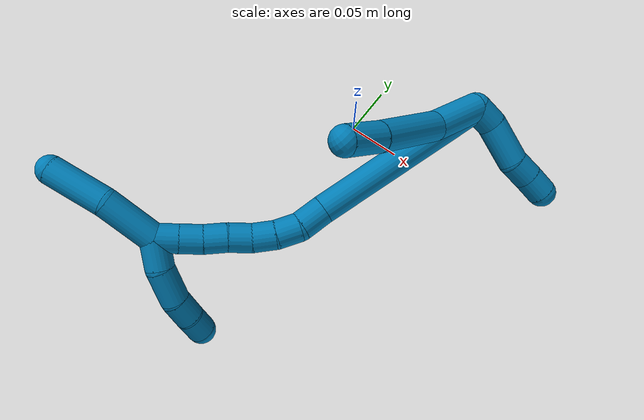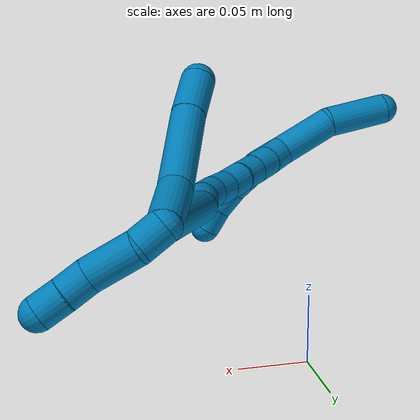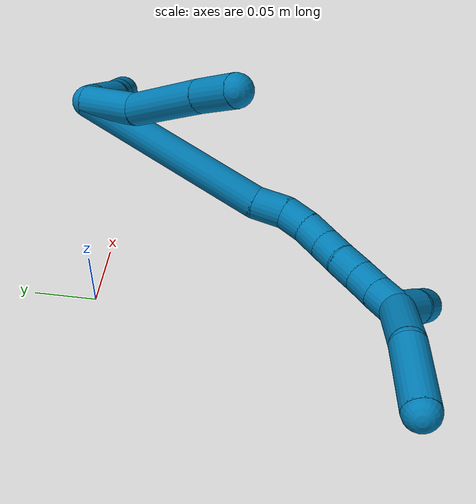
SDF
<sdf version="1.7">
 <world name="default">
  <model name="9">
   <static>0</static>
   <link name="9">
    <collision name="collision-cylinder-e_1_2_8">
     <pose>-0.013374 -0.016836 -0.008546 2.04052 -0.616311 -0.956717</pose>
     <geometry><cylinder><radius>0.0125</radius><length>0.046276</length></cylinder></geometry>
     <surface>
      <friction><ode><mu>1.16</mu><mu2>1.16</mu2><slip1>0</slip1><slip2>0</slip2></ode></friction>
      <contact><ode><kp>1e+06</kp><kd>1</kd><max_vel>0</max_vel><min_depth>0.001</min_depth></ode></contact>
     </surface>
    </collision>
    <visual name="visual-cylinder-e_1_2_8">
     <pose>-0.013374 -0.016836 -0.008546 2.04052 -0.616311 -0.956717</pose>
     <geometry><cylinder><radius>0.0125</radius><length>0.046276</length></cylinder></geometry>
     <material><ambient>0 0.490196 0.709804 1</ambient></material>
    </visual>
    <collision name="collision-cylinder-e_2_8_9">
     <pose>-0.051771 -0.049575 -0.034196 2.39256 -0.819859 -1.67096</pose>
     <geometry><cylinder><radius>0.0125</radius><length>0.068457</length></cylinder></geometry>
     <surface>
      <friction><ode><mu>1.16</mu><mu2>1.16</mu2><slip1>0</slip1><slip2>0</slip2></ode></friction>
      <contact><ode><kp>1e+06</kp><kd>1</kd><max_vel>0</max_vel><min_depth>0.001</min_depth></ode></contact>
     </surface>
    </collision>
    <visual name="visual-cylinder-e_2_8_9">
     <pose>-0.051771 -0.049575 -0.034196 2.39256 -0.819859 -1.67096</pose>
     <geometry><cylinder><radius>0.0125</radius><length>0.068457</length></cylinder></geometry>
     <material><ambient>0 0.490196 0.709804 1</ambient></material>
    </visual>
    <collision name="collision-cylinder-e_3_9_6">
     <pose>-0.088896 -0.073766 -0.061088 2.43894 -0.75637 -1.65134</pose>
     <geometry><cylinder><radius>0.0125</radius><length>0.035268</length></cylinder></geometry>
     <surface>
      <friction><ode><mu>1.16</mu><mu2>1.16</mu2><slip1>0</slip1><slip2>0</slip2></ode></friction>
      <contact><ode><kp>1e+06</kp><kd>1</kd><max_vel>0</max_vel><min_depth>0.001</min_depth></ode></contact>
     </surface>
    </collision>
    <visual name="visual-cylinder-e_3_9_6">
     <pose>-0.088896 -0.073766 -0.061088 2.43894 -0.75637 -1.65134</pose>
     <geometry><cylinder><radius>0.0125</radius><length>0.035268</length></cylinder></geometry>
     <material><ambient>0 0.490196 0.709804 1</ambient></material>
    </visual>
    <collision name="collision-cylinder-e_1_2_10">
     <pose>0.001512 0.000572 0.010636 -0.053769 0.141059 -0.003799</pose>
     <geometry><cylinder><radius>0.0125</radius><length>0.021516</length></cylinder></geometry>
     <surface>
      <friction><ode><mu>1.16</mu><mu2>1.16</mu2><slip1>0</slip1><slip2>0</slip2></ode></friction>
      <contact><ode><kp>1e+06</kp><kd>1</kd><max_vel>0</max_vel><min_depth>0.001</min_depth></ode></contact>
     </surface>
    </collision>
    <visual name="visual-cylinder-e_1_2_10">
     <pose>0.001512 0.000572 0.010636 -0.053769 0.141059 -0.003799</pose>
     <geometry><cylinder><radius>0.0125</radius><length>0.021516</length></cylinder></geometry>
     <material><ambient>0 0.490196 0.709804 1</ambient></material>
    </visual>
    <collision name="collision-cylinder-e_2_10_11">
     <pose>0.001402 -0.001795 0.039863 0.156814 -0.086004 -0.006761</pose>
     <geometry><cylinder><radius>0.0125</radius><length>0.037785</length></cylinder></geometry>
     <surface>
      <friction><ode><mu>1.16</mu><mu2>1.16</mu2><slip1>0</slip1><slip2>0</slip2></ode></friction>
      <contact><ode><kp>1e+06</kp><kd>1</kd><max_vel>0</max_vel><min_depth>0.001</min_depth></ode></contact>
     </surface>
    </collision>
    <visual name="visual-cylinder-e_2_10_11">
     <pose>0.001402 -0.001795 0.039863 0.156814 -0.086004 -0.006761</pose>
     <geometry><cylinder><radius>0.0125</radius><length>0.037785</length></cylinder></geometry>
     <material><ambient>0 0.490196 0.709804 1</ambient></material>
    </visual>
    <collision name="collision-cylinder-e_3_11_12">
     <pose>0.000917 -0.004058 0.068494 -0.067211 0.112546 -0.003788</pose>
     <geometry><cylinder><radius>0.0125</radius><length>0.020253</length></cylinder></geometry>
     <surface>
      <friction><ode><mu>1.16</mu><mu2>1.16</mu2><slip1>0</slip1><slip2>0</slip2></ode></friction>
      <contact><ode><kp>1e+06</kp><kd>1</kd><max_vel>0</max_vel><min_depth>0.001</min_depth></ode></contact>
     </surface>
    </collision>
    <visual name="visual-cylinder-e_3_11_12">
     <pose>0.000917 -0.004058 0.068494 -0.067211 0.112546 -0.003788</pose>
     <geometry><cylinder><radius>0.0125</radius><length>0.020253</length></cylinder></geometry>
     <material><ambient>0 0.490196 0.709804 1</ambient></material>
    </visual>
    <collision name="collision-cylinder-e_4_12_5">
     <pose>0.002736 -0.003061 0.088729 -0.03157 0.066818 -0.001055</pose>
     <geometry><cylinder><radius>0.0125</radius><length>0.020447</length></cylinder></geometry>
     <surface>
      <friction><ode><mu>1.16</mu><mu2>1.16</mu2><slip1>0</slip1><slip2>0</slip2></ode></friction>
      <contact><ode><kp>1e+06</kp><kd>1</kd><max_vel>0</max_vel><min_depth>0.001</min_depth></ode></contact>
     </surface>
    </collision>
    <visual name="visual-cylinder-e_4_12_5">
     <pose>0.002736 -0.003061 0.088729 -0.03157 0.066818 -0.001055</pose>
     <geometry><cylinder><radius>0.0125</radius><length>0.020447</length></cylinder></geometry>
     <material><ambient>0 0.490196 0.709804 1</ambient></material>
    </visual>
    <collision name="collision-cylinder-e_1_2_13">
     <pose>-0.019297 -0.073868 -0.011766 1.72875 -0.252475 -0.295289</pose>
     <geometry><cylinder><radius>0.0125</radius><length>0.154496</length></cylinder></geometry>
     <surface>
      <friction><ode><mu>1.16</mu><mu2>1.16</mu2><slip1>0</slip1><slip2>0</slip2></ode></friction>
      <contact><ode><kp>1e+06</kp><kd>1</kd><max_vel>0</max_vel><min_depth>0.001</min_depth></ode></contact>
     </surface>
    </collision>
    <visual name="visual-cylinder-e_1_2_13">
     <pose>-0.019297 -0.073868 -0.011766 1.72875 -0.252475 -0.295289</pose>
     <geometry><cylinder><radius>0.0125</radius><length>0.154496</length></cylinder></geometry>
     <material><ambient>0 0.490196 0.709804 1</ambient></material>
    </visual>
    <collision name="collision-cylinder-e_2_13_14">
     <pose>-0.044319 -0.158423 -0.025483 1.75144 -0.485057 -0.576803</pose>
     <geometry><cylinder><radius>0.0125</radius><length>0.024561</length></cylinder></geometry>
     <surface>
      <friction><ode><mu>1.16</mu><mu2>1.16</mu2><slip1>0</slip1><slip2>0</slip2></ode></friction>
      <contact><ode><kp>1e+06</kp><kd>1</kd><max_vel>0</max_vel><min_depth>0.001</min_depth></ode></contact>
     </surface>
    </collision>
    <visual name="visual-cylinder-e_2_13_14">
     <pose>-0.044319 -0.158423 -0.025483 1.75144 -0.485057 -0.576803</pose>
     <geometry><cylinder><radius>0.0125</radius><length>0.024561</length></cylinder></geometry>
     <material><ambient>0 0.490196 0.709804 1</ambient></material>
    </visual>
    <collision name="collision-cylinder-e_3_14_15">
     <pose>-0.052548 -0.178161 -0.031771 2.01756 -0.244426 -0.385234</pose>
     <geometry><cylinder><radius>0.0125</radius><length>0.020686</length></cylinder></geometry>
     <surface>
      <friction><ode><mu>1.16</mu><mu2>1.16</mu2><slip1>0</slip1><slip2>0</slip2></ode></friction>
      <contact><ode><kp>1e+06</kp><kd>1</kd><max_vel>0</max_vel><min_depth>0.001</min_depth></ode></contact>
     </surface>
    </collision>
    <visual name="visual-cylinder-e_3_14_15">
     <pose>-0.052548 -0.178161 -0.031771 2.01756 -0.244426 -0.385234</pose>
     <geometry><cylinder><radius>0.0125</radius><length>0.020686</length></cylinder></geometry>
     <material><ambient>0 0.490196 0.709804 1</ambient></material>
    </visual>
    <collision name="collision-cylinder-e_4_15_16">
     <pose>-0.056454 -0.195385 -0.041826 2.18131 -0.139692 -0.267069</pose>
     <geometry><cylinder><radius>0.0125</radius><length>0.020147</length></cylinder></geometry>
     <surface>
      <friction><ode><mu>1.16</mu><mu2>1.16</mu2><slip1>0</slip1><slip2>0</slip2></ode></friction>
      <contact><ode><kp>1e+06</kp><kd>1</kd><max_vel>0</max_vel><min_depth>0.001</min_depth></ode></contact>
     </surface>
    </collision>
    <visual name="visual-cylinder-e_4_15_16">
     <pose>-0.056454 -0.195385 -0.041826 2.18131 -0.139692 -0.267069</pose>
     <geometry><cylinder><radius>0.0125</radius><length>0.020147</length></cylinder></geometry>
     <material><ambient>0 0.490196 0.709804 1</ambient></material>
    </visual>
    <collision name="collision-cylinder-e_5_16_17">
     <pose>-0.059658 -0.210382 -0.054696 2.3796 -0.18028 -0.443852</pose>
     <geometry><cylinder><radius>0.0125</radius><length>0.020095</length></cylinder></geometry>
     <surface>
      <friction><ode><mu>1.16</mu><mu2>1.16</mu2><slip1>0</slip1><slip2>0</slip2></ode></friction>
      <contact><ode><kp>1e+06</kp><kd>1</kd><max_vel>0</max_vel><min_depth>0.001</min_depth></ode></contact>
     </surface>
    </collision>
    <visual name="visual-cylinder-e_5_16_17">
     <pose>-0.059658 -0.210382 -0.054696 2.3796 -0.18028 -0.443852</pose>
     <geometry><cylinder><radius>0.0125</radius><length>0.020095</length></cylinder></geometry>
     <material><ambient>0 0.490196 0.709804 1</ambient></material>
    </visual>
    <collision name="collision-cylinder-e_6_17_18">
     <pose>-0.06334 -0.224751 -0.068139 2.26592 -0.189111 -0.399759</pose>
     <geometry><cylinder><radius>0.0125</radius><length>0.020004</length></cylinder></geometry>
     <surface>
      <friction><ode><mu>1.16</mu><mu2>1.16</mu2><slip1>0</slip1><slip2>0</slip2></ode></friction>
      <contact><ode><kp>1e+06</kp><kd>1</kd><max_vel>0</max_vel><min_depth>0.001</min_depth></ode></contact>
     </surface>
    </collision>
    <visual name="visual-cylinder-e_6_17_18">
     <pose>-0.06334 -0.224751 -0.068139 2.26592 -0.189111 -0.399759</pose>
     <geometry><cylinder><radius>0.0125</radius><length>0.020004</length></cylinder></geometry>
     <material><ambient>0 0.490196 0.709804 1</ambient></material>
    </visual>
    <collision name="collision-cylinder-e_7_18_19">
     <pose>-0.067073 -0.239065 -0.08156 2.38199 -0.186275 -0.459724</pose>
     <geometry><cylinder><radius>0.0125</radius><length>0.020009</length></cylinder></geometry>
     <surface>
      <friction><ode><mu>1.16</mu><mu2>1.16</mu2><slip1>0</slip1><slip2>0</slip2></ode></friction>
      <contact><ode><kp>1e+06</kp><kd>1</kd><max_vel>0</max_vel><min_depth>0.001</min_depth></ode></contact>
     </surface>
    </collision>
    <visual name="visual-cylinder-e_7_18_19">
     <pose>-0.067073 -0.239065 -0.08156 2.38199 -0.186275 -0.459724</pose>
     <geometry><cylinder><radius>0.0125</radius><length>0.020009</length></cylinder></geometry>
     <material><ambient>0 0.490196 0.709804 1</ambient></material>
    </visual>
    <collision name="collision-cylinder-e_8_19_1">
     <pose>-0.071181 -0.25242 -0.09587 2.39949 -0.227484 -0.571164</pose>
     <geometry><cylinder><radius>0.0125</radius><length>0.020001</length></cylinder></geometry>
     <surface>
      <friction><ode><mu>1.16</mu><mu2>1.16</mu2><slip1>0</slip1><slip2>0</slip2></ode></friction>
      <contact><ode><kp>1e+06</kp><kd>1</kd><max_vel>0</max_vel><min_depth>0.001</min_depth></ode></contact>
     </surface>
    </collision>
    <visual name="visual-cylinder-e_8_19_1">
     <pose>-0.071181 -0.25242 -0.09587 2.39949 -0.227484 -0.571164</pose>
     <geometry><cylinder><radius>0.0125</radius><length>0.020001</length></cylinder></geometry>
     <material><ambient>0 0.490196 0.709804 1</ambient></material>
    </visual>
    <collision name="collision-cylinder-e_1_1_20">
     <pose>-0.075729 -0.265728 -0.092228 0.55584 -0.177997 -0.050907</pose>
     <geometry><cylinder><radius>0.0125</radius><length>0.02589</length></cylinder></geometry>
     <surface>
      <friction><ode><mu>1.16</mu><mu2>1.16</mu2><slip1>0</slip1><slip2>0</slip2></ode></friction>
      <contact><ode><kp>1e+06</kp><kd>1</kd><max_vel>0</max_vel><min_depth>0.001</min_depth></ode></contact>
     </surface>
    </collision>
    <visual name="visual-cylinder-e_1_1_20">
     <pose>-0.075729 -0.265728 -0.092228 0.55584 -0.177997 -0.050907</pose>
     <geometry><cylinder><radius>0.0125</radius><length>0.02589</length></cylinder></geometry>
     <material><ambient>0 0.490196 0.709804 1</ambient></material>
    </visual>
    <collision name="collision-cylinder-e_2_20_21">
     <pose>-0.076904 -0.278606 -0.066878 0.400825 0.070648 0.014357</pose>
     <geometry><cylinder><radius>0.0125</radius><length>0.031635</length></cylinder></geometry>
     <surface>
      <friction><ode><mu>1.16</mu><mu2>1.16</mu2><slip1>0</slip1><slip2>0</slip2></ode></friction>
      <contact><ode><kp>1e+06</kp><kd>1</kd><max_vel>0</max_vel><min_depth>0.001</min_depth></ode></contact>
     </surface>
    </collision>
    <visual name="visual-cylinder-e_2_20_21">
     <pose>-0.076904 -0.278606 -0.066878 0.400825 0.070648 0.014357</pose>
     <geometry><cylinder><radius>0.0125</radius><length>0.031635</length></cylinder></geometry>
     <material><ambient>0 0.490196 0.709804 1</ambient></material>
    </visual>
    <collision name="collision-cylinder-e_3_21_22">
     <pose>-0.072983 -0.287295 -0.041962 0.239096 0.25652 0.030981</pose>
     <geometry><cylinder><radius>0.0125</radius><length>0.02211</length></cylinder></geometry>
     <surface>
      <friction><ode><mu>1.16</mu><mu2>1.16</mu2><slip1>0</slip1><slip2>0</slip2></ode></friction>
      <contact><ode><kp>1e+06</kp><kd>1</kd><max_vel>0</max_vel><min_depth>0.001</min_depth></ode></contact>
     </surface>
    </collision>
    <visual name="visual-cylinder-e_3_21_22">
     <pose>-0.072983 -0.287295 -0.041962 0.239096 0.25652 0.030981</pose>
     <geometry><cylinder><radius>0.0125</radius><length>0.02211</length></cylinder></geometry>
     <material><ambient>0 0.490196 0.709804 1</ambient></material>
    </visual>
    <collision name="collision-cylinder-e_4_22_4">
     <pose>-0.06618 -0.29257 -0.022618 0.297149 0.403433 0.061198</pose>
     <geometry><cylinder><radius>0.0125</radius><length>0.020365</length></cylinder></geometry>
     <surface>
      <friction><ode><mu>1.16</mu><mu2>1.16</mu2><slip1>0</slip1><slip2>0</slip2></ode></friction>
      <contact><ode><kp>1e+06</kp><kd>1</kd><max_vel>0</max_vel><min_depth>0.001</min_depth></ode></contact>
     </surface>
    </collision>
    <visual name="visual-cylinder-e_4_22_4">
     <pose>-0.06618 -0.29257 -0.022618 0.297149 0.403433 0.061198</pose>
     <geometry><cylinder><radius>0.0125</radius><length>0.020365</length></cylinder></geometry>
     <material><ambient>0 0.490196 0.709804 1</ambient></material>
    </visual>
    <collision name="collision-cylinder-e_1_1_23">
     <pose>-0.074111 -0.262538 -0.126844 2.99417 -0.028018 -0.374986</pose>
     <geometry><cylinder><radius>0.0125</radius><length>0.048128</length></cylinder></geometry>
     <surface>
      <friction><ode><mu>1.16</mu><mu2>1.16</mu2><slip1>0</slip1><slip2>0</slip2></ode></friction>
      <contact><ode><kp>1e+06</kp><kd>1</kd><max_vel>0</max_vel><min_depth>0.001</min_depth></ode></contact>
     </surface>
    </collision>
    <visual name="visual-cylinder-e_1_1_23">
     <pose>-0.074111 -0.262538 -0.126844 2.99417 -0.028018 -0.374986</pose>
     <geometry><cylinder><radius>0.0125</radius><length>0.048128</length></cylinder></geometry>
     <material><ambient>0 0.490196 0.709804 1</ambient></material>
    </visual>
    <collision name="collision-cylinder-e_2_23_3">
     <pose>-0.06959 -0.275536 -0.17422 2.75994 0.201657 0.964898</pose>
     <geometry><cylinder><radius>0.0125</radius><length>0.051872</length></cylinder></geometry>
     <surface>
      <friction><ode><mu>1.16</mu><mu2>1.16</mu2><slip1>0</slip1><slip2>0</slip2></ode></friction>
      <contact><ode><kp>1e+06</kp><kd>1</kd><max_vel>0</max_vel><min_depth>0.001</min_depth></ode></contact>
     </surface>
    </collision>
    <visual name="visual-cylinder-e_2_23_3">
     <pose>-0.06959 -0.275536 -0.17422 2.75994 0.201657 0.964898</pose>
     <geometry><cylinder><radius>0.0125</radius><length>0.051872</length></cylinder></geometry>
     <material><ambient>0 0.490196 0.709804 1</ambient></material>
    </visual>
    <collision name="collision-sphere-3">
     <pose>-0.064395 -0.285 -0.197802 0 -0 0</pose>
     <geometry><sphere><radius>0.0125</radius></sphere></geometry>
     <surface>
      <friction><ode><mu>1.16</mu><mu2>1.16</mu2><slip1>0</slip1><slip2>0</slip2></ode></friction>
      <contact><ode><kp>1e+06</kp><kd>1</kd><max_vel>0</max_vel><min_depth>0.001</min_depth></ode></contact>
     </surface>
    </collision>
    <visual name="visual-sphere-3">
     <pose>-0.064395 -0.285 -0.197802 0 -0 0</pose>
     <geometry><sphere><radius>0.0125</radius></sphere></geometry>
     <material><ambient>0 0.490196 0.709804 1</ambient></material>
    </visual>
    <collision name="collision-sphere-23">
     <pose>-0.074785 -0.266072 -0.150638 0 -0 0</pose>
     <geometry><sphere><radius>0.0125</radius></sphere></geometry>
     <surface>
      <friction><ode><mu>1.16</mu><mu2>1.16</mu2><slip1>0</slip1><slip2>0</slip2></ode></friction>
      <contact><ode><kp>1e+06</kp><kd>1</kd><max_vel>0</max_vel><min_depth>0.001</min_depth></ode></contact>
     </surface>
    </collision>
    <visual name="visual-sphere-23">
     <pose>-0.074785 -0.266072 -0.150638 0 -0 0</pose>
     <geometry><sphere><radius>0.0125</radius></sphere></geometry>
     <material><ambient>0 0.490196 0.709804 1</ambient></material>
    </visual>
    <collision name="collision-sphere-4">
     <pose>-0.062183 -0.295312 -0.013663 0 -0 0</pose>
     <geometry><sphere><radius>0.0125</radius></sphere></geometry>
     <surface>
      <friction><ode><mu>1.16</mu><mu2>1.16</mu2><slip1>0</slip1><slip2>0</slip2></ode></friction>
      <contact><ode><kp>1e+06</kp><kd>1</kd><max_vel>0</max_vel><min_depth>0.001</min_depth></ode></contact>
     </surface>
    </collision>
    <visual name="visual-sphere-4">
     <pose>-0.062183 -0.295312 -0.013663 0 -0 0</pose>
     <geometry><sphere><radius>0.0125</radius></sphere></geometry>
     <material><ambient>0 0.490196 0.709804 1</ambient></material>
    </visual>
    <collision name="collision-sphere-22">
     <pose>-0.070178 -0.289828 -0.031573 0 -0 0</pose>
     <geometry><sphere><radius>0.0125</radius></sphere></geometry>
     <surface>
      <friction><ode><mu>1.16</mu><mu2>1.16</mu2><slip1>0</slip1><slip2>0</slip2></ode></friction>
      <contact><ode><kp>1e+06</kp><kd>1</kd><max_vel>0</max_vel><min_depth>0.001</min_depth></ode></contact>
     </surface>
    </collision>
    <visual name="visual-sphere-22">
     <pose>-0.070178 -0.289828 -0.031573 0 -0 0</pose>
     <geometry><sphere><radius>0.0125</radius></sphere></geometry>
     <material><ambient>0 0.490196 0.709804 1</ambient></material>
    </visual>
    <collision name="collision-sphere-21">
     <pose>-0.075788 -0.284763 -0.052351 0 -0 0</pose>
     <geometry><sphere><radius>0.0125</radius></sphere></geometry>
     <surface>
      <friction><ode><mu>1.16</mu><mu2>1.16</mu2><slip1>0</slip1><slip2>0</slip2></ode></friction>
      <contact><ode><kp>1e+06</kp><kd>1</kd><max_vel>0</max_vel><min_depth>0.001</min_depth></ode></contact>
     </surface>
    </collision>
    <visual name="visual-sphere-21">
     <pose>-0.075788 -0.284763 -0.052351 0 -0 0</pose>
     <geometry><sphere><radius>0.0125</radius></sphere></geometry>
     <material><ambient>0 0.490196 0.709804 1</ambient></material>
    </visual>
    <collision name="collision-sphere-20">
     <pose>-0.078021 -0.27245 -0.081406 0 -0 0</pose>
     <geometry><sphere><radius>0.0125</radius></sphere></geometry>
     <surface>
      <friction><ode><mu>1.16</mu><mu2>1.16</mu2><slip1>0</slip1><slip2>0</slip2></ode></friction>
      <contact><ode><kp>1e+06</kp><kd>1</kd><max_vel>0</max_vel><min_depth>0.001</min_depth></ode></contact>
     </surface>
    </collision>
    <visual name="visual-sphere-20">
     <pose>-0.078021 -0.27245 -0.081406 0 -0 0</pose>
     <geometry><sphere><radius>0.0125</radius></sphere></geometry>
     <material><ambient>0 0.490196 0.709804 1</ambient></material>
    </visual>
    <collision name="collision-sphere-11">
     <pose>-0.000221 -0.004734 0.058454 0 -0 0</pose>
     <geometry><sphere><radius>0.0125</radius></sphere></geometry>
     <surface>
      <friction><ode><mu>1.16</mu><mu2>1.16</mu2><slip1>0</slip1><slip2>0</slip2></ode></friction>
      <contact><ode><kp>1e+06</kp><kd>1</kd><max_vel>0</max_vel><min_depth>0.001</min_depth></ode></contact>
     </surface>
    </collision>
    <visual name="visual-sphere-11">
     <pose>-0.000221 -0.004734 0.058454 0 -0 0</pose>
     <geometry><sphere><radius>0.0125</radius></sphere></geometry>
     <material><ambient>0 0.490196 0.709804 1</ambient></material>
    </visual>
    <collision name="collision-sphere-10">
     <pose>0.003025 0.001145 0.021271 0 -0 0</pose>
     <geometry><sphere><radius>0.0125</radius></sphere></geometry>
     <surface>
      <friction><ode><mu>1.16</mu><mu2>1.16</mu2><slip1>0</slip1><slip2>0</slip2></ode></friction>
      <contact><ode><kp>1e+06</kp><kd>1</kd><max_vel>0</max_vel><min_depth>0.001</min_depth></ode></contact>
     </surface>
    </collision>
    <visual name="visual-sphere-10">
     <pose>0.003025 0.001145 0.021271 0 -0 0</pose>
     <geometry><sphere><radius>0.0125</radius></sphere></geometry>
     <material><ambient>0 0.490196 0.709804 1</ambient></material>
    </visual>
    <collision name="collision-sphere-6">
     <pose>-0.100998 -0.082055 -0.070876 0 -0 0</pose>
     <geometry><sphere><radius>0.0125</radius></sphere></geometry>
     <surface>
      <friction><ode><mu>1.16</mu><mu2>1.16</mu2><slip1>0</slip1><slip2>0</slip2></ode></friction>
      <contact><ode><kp>1e+06</kp><kd>1</kd><max_vel>0</max_vel><min_depth>0.001</min_depth></ode></contact>
     </surface>
    </collision>
    <visual name="visual-sphere-6">
     <pose>-0.100998 -0.082055 -0.070876 0 -0 0</pose>
     <geometry><sphere><radius>0.0125</radius></sphere></geometry>
     <material><ambient>0 0.490196 0.709804 1</ambient></material>
    </visual>
    <collision name="collision-sphere-9">
     <pose>-0.076794 -0.065478 -0.0513 0 -0 0</pose>
     <geometry><sphere><radius>0.0125</radius></sphere></geometry>
     <surface>
      <friction><ode><mu>1.16</mu><mu2>1.16</mu2><slip1>0</slip1><slip2>0</slip2></ode></friction>
      <contact><ode><kp>1e+06</kp><kd>1</kd><max_vel>0</max_vel><min_depth>0.001</min_depth></ode></contact>
     </surface>
    </collision>
    <visual name="visual-sphere-9">
     <pose>-0.076794 -0.065478 -0.0513 0 -0 0</pose>
     <geometry><sphere><radius>0.0125</radius></sphere></geometry>
     <material><ambient>0 0.490196 0.709804 1</ambient></material>
    </visual>
    <collision name="collision-sphere-2">
     <geometry><sphere><radius>0.0125</radius></sphere></geometry>
     <surface>
      <friction><ode><mu>1.16</mu><mu2>1.16</mu2><slip1>0</slip1><slip2>0</slip2></ode></friction>
      <contact><ode><kp>1e+06</kp><kd>1</kd><max_vel>0</max_vel><min_depth>0.001</min_depth></ode></contact>
     </surface>
    </collision>
    <visual name="visual-sphere-2">
     <geometry><sphere><radius>0.0125</radius></sphere></geometry>
     <material><ambient>0 0.490196 0.709804 1</ambient></material>
    </visual>
    <collision name="collision-sphere-19">
     <pose>-0.068926 -0.245836 -0.088688 0 -0 0</pose>
     <geometry><sphere><radius>0.0125</radius></sphere></geometry>
     <surface>
      <friction><ode><mu>1.16</mu><mu2>1.16</mu2><slip1>0</slip1><slip2>0</slip2></ode></friction>
      <contact><ode><kp>1e+06</kp><kd>1</kd><max_vel>0</max_vel><min_depth>0.001</min_depth></ode></contact>
     </surface>
    </collision>
    <visual name="visual-sphere-19">
     <pose>-0.068926 -0.245836 -0.088688 0 -0 0</pose>
     <geometry><sphere><radius>0.0125</radius></sphere></geometry>
     <material><ambient>0 0.490196 0.709804 1</ambient></material>
    </visual>
    <collision name="collision-sphere-8">
     <pose>-0.026749 -0.033672 -0.017092 0 -0 0</pose>
     <geometry><sphere><radius>0.0125</radius></sphere></geometry>
     <surface>
      <friction><ode><mu>1.16</mu><mu2>1.16</mu2><slip1>0</slip1><slip2>0</slip2></ode></friction>
      <contact><ode><kp>1e+06</kp><kd>1</kd><max_vel>0</max_vel><min_depth>0.001</min_depth></ode></contact>
     </surface>
    </collision>
    <visual name="visual-sphere-8">
     <pose>-0.026749 -0.033672 -0.017092 0 -0 0</pose>
     <geometry><sphere><radius>0.0125</radius></sphere></geometry>
     <material><ambient>0 0.490196 0.709804 1</ambient></material>
    </visual>
    <collision name="collision-sphere-12">
     <pose>0.002054 -0.003383 0.078534 0 -0 0</pose>
     <geometry><sphere><radius>0.0125</radius></sphere></geometry>
     <surface>
      <friction><ode><mu>1.16</mu><mu2>1.16</mu2><slip1>0</slip1><slip2>0</slip2></ode></friction>
      <contact><ode><kp>1e+06</kp><kd>1</kd><max_vel>0</max_vel><min_depth>0.001</min_depth></ode></contact>
     </surface>
    </collision>
    <visual name="visual-sphere-12">
     <pose>0.002054 -0.003383 0.078534 0 -0 0</pose>
     <geometry><sphere><radius>0.0125</radius></sphere></geometry>
     <material><ambient>0 0.490196 0.709804 1</ambient></material>
    </visual>
    <collision name="collision-sphere-5">
     <pose>0.003419 -0.002739 0.098925 0 -0 0</pose>
     <geometry><sphere><radius>0.0125</radius></sphere></geometry>
     <surface>
      <friction><ode><mu>1.16</mu><mu2>1.16</mu2><slip1>0</slip1><slip2>0</slip2></ode></friction>
      <contact><ode><kp>1e+06</kp><kd>1</kd><max_vel>0</max_vel><min_depth>0.001</min_depth></ode></contact>
     </surface>
    </collision>
    <visual name="visual-sphere-5">
     <pose>0.003419 -0.002739 0.098925 0 -0 0</pose>
     <geometry><sphere><radius>0.0125</radius></sphere></geometry>
     <material><ambient>0 0.490196 0.709804 1</ambient></material>
    </visual>
    <collision name="collision-sphere-13">
     <pose>-0.038593 -0.147736 -0.023531 0 -0 0</pose>
     <geometry><sphere><radius>0.0125</radius></sphere></geometry>
     <surface>
      <friction><ode><mu>1.16</mu><mu2>1.16</mu2><slip1>0</slip1><slip2>0</slip2></ode></friction>
      <contact><ode><kp>1e+06</kp><kd>1</kd><max_vel>0</max_vel><min_depth>0.001</min_depth></ode></contact>
     </surface>
    </collision>
    <visual name="visual-sphere-13">
     <pose>-0.038593 -0.147736 -0.023531 0 -0 0</pose>
     <geometry><sphere><radius>0.0125</radius></sphere></geometry>
     <material><ambient>0 0.490196 0.709804 1</ambient></material>
    </visual>
    <collision name="collision-sphere-14">
     <pose>-0.050045 -0.16911 -0.027435 0 -0 0</pose>
     <geometry><sphere><radius>0.0125</radius></sphere></geometry>
     <surface>
      <friction><ode><mu>1.16</mu><mu2>1.16</mu2><slip1>0</slip1><slip2>0</slip2></ode></friction>
      <contact><ode><kp>1e+06</kp><kd>1</kd><max_vel>0</max_vel><min_depth>0.001</min_depth></ode></contact>
     </surface>
    </collision>
    <visual name="visual-sphere-14">
     <pose>-0.050045 -0.16911 -0.027435 0 -0 0</pose>
     <geometry><sphere><radius>0.0125</radius></sphere></geometry>
     <material><ambient>0 0.490196 0.709804 1</ambient></material>
    </visual>
    <collision name="collision-sphere-15">
     <pose>-0.055051 -0.187211 -0.036107 0 -0 0</pose>
     <geometry><sphere><radius>0.0125</radius></sphere></geometry>
     <surface>
      <friction><ode><mu>1.16</mu><mu2>1.16</mu2><slip1>0</slip1><slip2>0</slip2></ode></friction>
      <contact><ode><kp>1e+06</kp><kd>1</kd><max_vel>0</max_vel><min_depth>0.001</min_depth></ode></contact>
     </surface>
    </collision>
    <visual name="visual-sphere-15">
     <pose>-0.055051 -0.187211 -0.036107 0 -0 0</pose>
     <geometry><sphere><radius>0.0125</radius></sphere></geometry>
     <material><ambient>0 0.490196 0.709804 1</ambient></material>
    </visual>
    <collision name="collision-sphere-16">
     <pose>-0.057856 -0.203559 -0.047545 0 -0 0</pose>
     <geometry><sphere><radius>0.0125</radius></sphere></geometry>
     <surface>
      <friction><ode><mu>1.16</mu><mu2>1.16</mu2><slip1>0</slip1><slip2>0</slip2></ode></friction>
      <contact><ode><kp>1e+06</kp><kd>1</kd><max_vel>0</max_vel><min_depth>0.001</min_depth></ode></contact>
     </surface>
    </collision>
    <visual name="visual-sphere-16">
     <pose>-0.057856 -0.203559 -0.047545 0 -0 0</pose>
     <geometry><sphere><radius>0.0125</radius></sphere></geometry>
     <material><ambient>0 0.490196 0.709804 1</ambient></material>
    </visual>
    <collision name="collision-sphere-17">
     <pose>-0.06146 -0.217206 -0.061847 0 -0 0</pose>
     <geometry><sphere><radius>0.0125</radius></sphere></geometry>
     <surface>
      <friction><ode><mu>1.16</mu><mu2>1.16</mu2><slip1>0</slip1><slip2>0</slip2></ode></friction>
      <contact><ode><kp>1e+06</kp><kd>1</kd><max_vel>0</max_vel><min_depth>0.001</min_depth></ode></contact>
     </surface>
    </collision>
    <visual name="visual-sphere-17">
     <pose>-0.06146 -0.217206 -0.061847 0 -0 0</pose>
     <geometry><sphere><radius>0.0125</radius></sphere></geometry>
     <material><ambient>0 0.490196 0.709804 1</ambient></material>
    </visual>
    <collision name="collision-sphere-18">
     <pose>-0.06522 -0.232295 -0.074431 0 -0 0</pose>
     <geometry><sphere><radius>0.0125</radius></sphere></geometry>
     <surface>
      <friction><ode><mu>1.16</mu><mu2>1.16</mu2><slip1>0</slip1><slip2>0</slip2></ode></friction>
      <contact><ode><kp>1e+06</kp><kd>1</kd><max_vel>0</max_vel><min_depth>0.001</min_depth></ode></contact>
     </surface>
    </collision>
    <visual name="visual-sphere-18">
     <pose>-0.06522 -0.232295 -0.074431 0 -0 0</pose>
     <geometry><sphere><radius>0.0125</radius></sphere></geometry>
     <material><ambient>0 0.490196 0.709804 1</ambient></material>
    </visual>
    <collision name="collision-sphere-1">
     <pose>-0.073437 -0.259005 -0.103051 0 -0 0</pose>
     <geometry><sphere><radius>0.0125</radius></sphere></geometry>
     <surface>
      <friction><ode><mu>1.16</mu><mu2>1.16</mu2><slip1>0</slip1><slip2>0</slip2></ode></friction>
      <contact><ode><kp>1e+06</kp><kd>1</kd><max_vel>0</max_vel><min_depth>0.001</min_depth></ode></contact>
     </surface>
    </collision>
    <visual name="visual-sphere-1">
     <pose>-0.073437 -0.259005 -0.103051 0 -0 0</pose>
     <geometry><sphere><radius>0.0125</radius></sphere></geometry>
     <material><ambient>0 0.490196 0.709804 1</ambient></material>
    </visual>
    <inertial>
     <pose>-0.044261 -0.13785 -0.041258 0 -0 0</pose>
     <mass>0.75</mass>
     <inertia>
      <ixx>0.000212</ixx>
      <ixy>0</ixy>
      <ixz>0</ixz>
      <iyy>-0.000153</iyy>
      <iyz>0</iyz>
      <izz>0.000445</izz>
     </inertia>
    </inertial>
   </link>
   <pose>0.103896 0.018801 0.1159 2.35729 0.770089 2.12311</pose>
  </model>
 </world>
</sdf>
